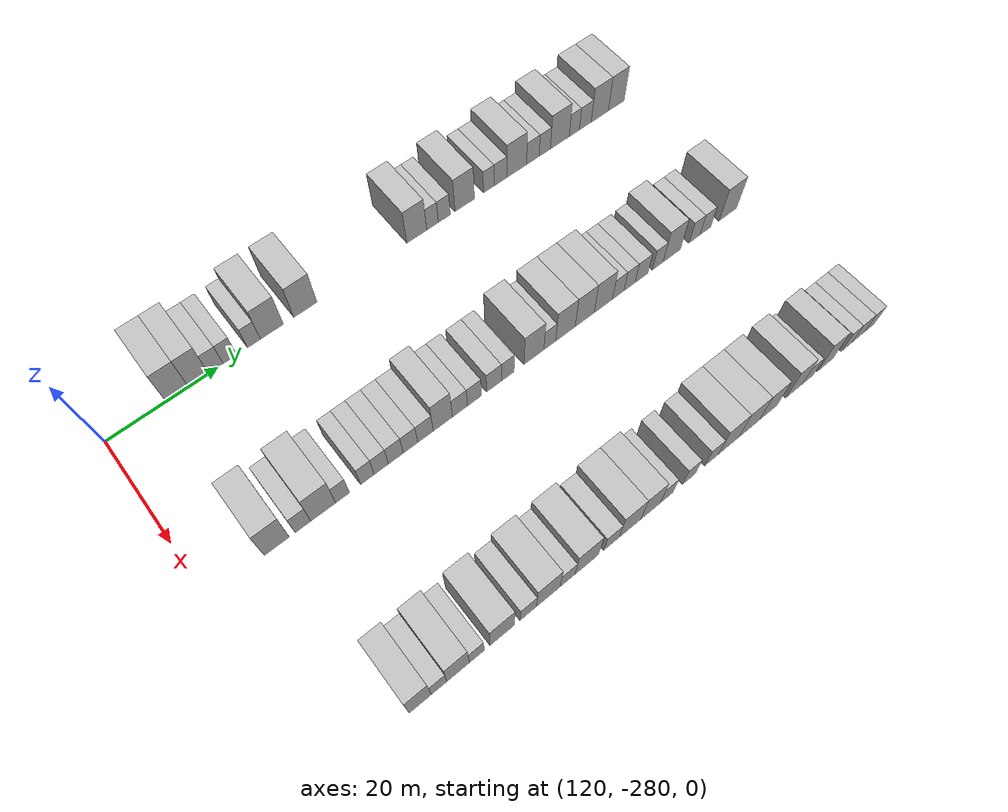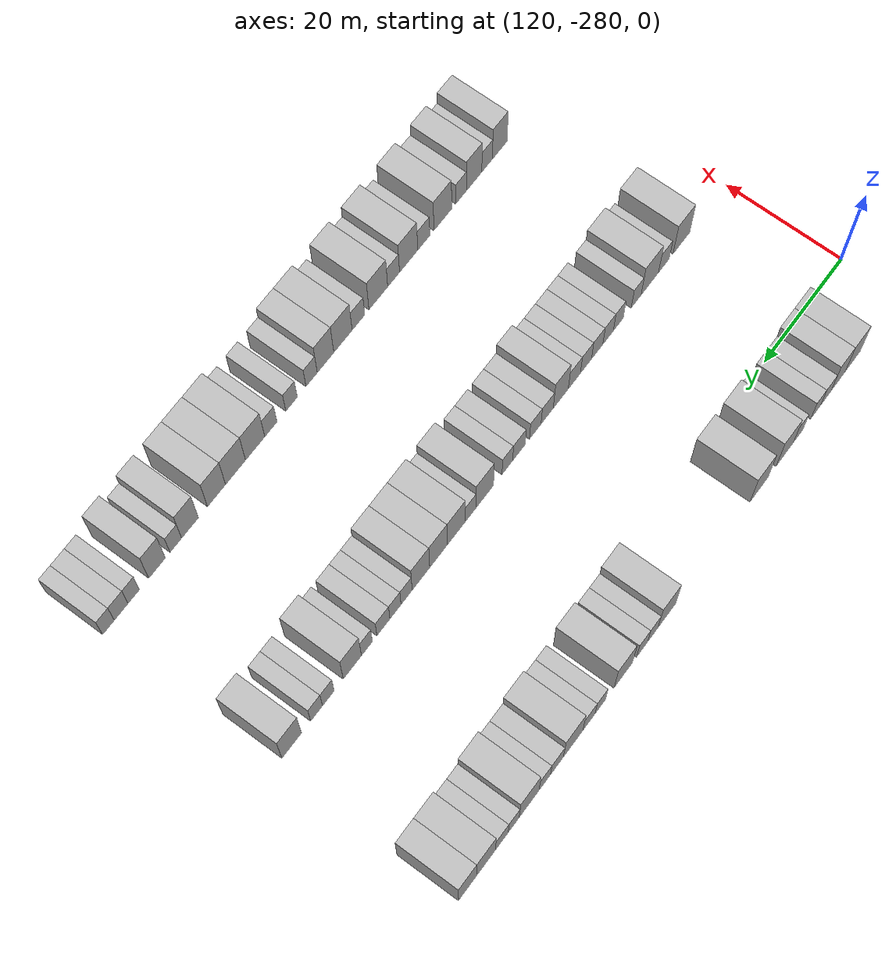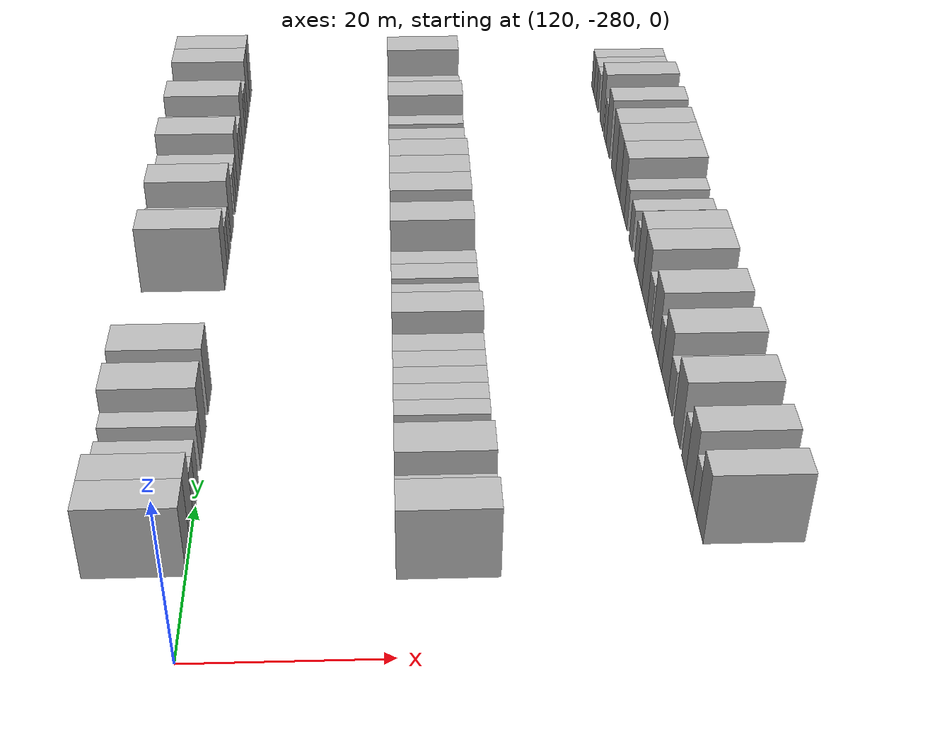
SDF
<sdf version="1.6">
 <world name="default">
  <model name="building_728">
   <static>1</static>
   <pose>115.0000 -267.4559 0 0.000000 0.000000 0.000000</pose>
   <link name="link">
    <pose>0 0 4.50 0 0 0</pose>
    <collision name="collision"><geometry><box><size>10.0000 3.9761 9.0000</size></box></geometry></collision>
    <visual name="visual">
     <cast_shadows>0</cast_shadows>
     <geometry><box><size>10.0000 3.9761 9.0000</size></box></geometry>
     <material>
      <script>
       <uri>model://HANNAS_wall/materials/scripts</uri>
       <uri>model://HANNAS_wall/materials/textures</uri>
       <name>vrc/HANNAS_wall</name>
      </script>
     </material>
    </visual>
   </link>
  </model>
  <model name="building_729">
   <static>1</static>
   <pose>115.0000 -263.6639 0 0.000000 0.000000 0.000000</pose>
   <link name="link">
    <pose>0 0 4.50 0 0 0</pose>
    <collision name="collision"><geometry><box><size>10.0000 3.6079 9.0000</size></box></geometry></collision>
    <visual name="visual">
     <cast_shadows>0</cast_shadows>
     <geometry><box><size>10.0000 3.6079 9.0000</size></box></geometry>
     <material>
      <script>
       <uri>model://HANNAS_wall/materials/scripts</uri>
       <uri>model://HANNAS_wall/materials/textures</uri>
       <name>vrc/HANNAS_wall</name>
      </script>
     </material>
    </visual>
   </link>
  </model>
  <model name="building_730">
   <static>1</static>
   <pose>115.0000 -260.5057 0 0.000000 0.000000 0.000000</pose>
   <link name="link">
    <pose>0 0 3.00 0 0 0</pose>
    <collision name="collision"><geometry><box><size>10.0000 2.7085 6.0000</size></box></geometry></collision>
    <visual name="visual">
     <cast_shadows>0</cast_shadows>
     <geometry><box><size>10.0000 2.7085 6.0000</size></box></geometry>
     <material>
      <script>
       <uri>model://HANNAS_wall/materials/scripts</uri>
       <uri>model://HANNAS_wall/materials/textures</uri>
       <name>vrc/HANNAS_wall</name>
      </script>
     </material>
    </visual>
   </link>
  </model>
  <model name="building_731">
   <static>1</static>
   <pose>115.0000 -257.9058 0 0.000000 0.000000 0.000000</pose>
   <link name="link">
    <pose>0 0 3.00 0 0 0</pose>
    <collision name="collision"><geometry><box><size>10.0000 2.4912 6.0000</size></box></geometry></collision>
    <visual name="visual">
     <cast_shadows>0</cast_shadows>
     <geometry><box><size>10.0000 2.4912 6.0000</size></box></geometry>
     <material>
      <script>
       <uri>model://HANNAS_wall/materials/scripts</uri>
       <uri>model://HANNAS_wall/materials/textures</uri>
       <name>vrc/HANNAS_wall</name>
      </script>
     </material>
    </visual>
   </link>
  </model>
  <model name="building_732">
   <static>1</static>
   <pose>115.0000 -253.4452 0 0.000000 0.000000 0.000000</pose>
   <link name="link">
    <pose>0 0 3.00 0 0 0</pose>
    <collision name="collision"><geometry><box><size>10.0000 2.4299 6.0000</size></box></geometry></collision>
    <visual name="visual">
     <cast_shadows>0</cast_shadows>
     <geometry><box><size>10.0000 2.4299 6.0000</size></box></geometry>
     <material>
      <script>
       <uri>model://HANNAS_wall/materials/scripts</uri>
       <uri>model://HANNAS_wall/materials/textures</uri>
       <name>vrc/HANNAS_wall</name>
      </script>
     </material>
    </visual>
   </link>
  </model>
  <model name="building_733">
   <static>1</static>
   <pose>115.0000 -250.0644 0 0.000000 0.000000 0.000000</pose>
   <link name="link">
    <pose>0 0 4.50 0 0 0</pose>
    <collision name="collision"><geometry><box><size>10.0000 4.3317 9.0000</size></box></geometry></collision>
    <visual name="visual">
     <cast_shadows>0</cast_shadows>
     <geometry><box><size>10.0000 4.3317 9.0000</size></box></geometry>
     <material>
      <script>
       <uri>model://HANNAS_wall/materials/scripts</uri>
       <uri>model://HANNAS_wall/materials/textures</uri>
       <name>vrc/HANNAS_wall</name>
      </script>
     </material>
    </visual>
   </link>
  </model>
  <model name="building_734">
   <static>1</static>
   <pose>115.0000 -243.6487 0 0.000000 0.000000 0.000000</pose>
   <link name="link">
    <pose>0 0 4.50 0 0 0</pose>
    <collision name="collision"><geometry><box><size>10.0000 4.4998 9.0000</size></box></geometry></collision>
    <visual name="visual">
     <cast_shadows>0</cast_shadows>
     <geometry><box><size>10.0000 4.4998 9.0000</size></box></geometry>
     <material>
      <script>
       <uri>model://HANNAS_wall/materials/scripts</uri>
       <uri>model://HANNAS_wall/materials/textures</uri>
       <name>vrc/HANNAS_wall</name>
      </script>
     </material>
    </visual>
   </link>
  </model>
  <model name="building_735">
   <static>1</static>
   <pose>115.0000 -221.0601 0 0.000000 0.000000 0.000000</pose>
   <link name="link">
    <pose>0 0 4.50 0 0 0</pose>
    <collision name="collision"><geometry><box><size>10.0000 4.2258 9.0000</size></box></geometry></collision>
    <visual name="visual">
     <cast_shadows>0</cast_shadows>
     <geometry><box><size>10.0000 4.2258 9.0000</size></box></geometry>
     <material>
      <script>
       <uri>model://HANNAS_wall/materials/scripts</uri>
       <uri>model://HANNAS_wall/materials/textures</uri>
       <name>vrc/HANNAS_wall</name>
      </script>
     </material>
    </visual>
   </link>
  </model>
  <model name="building_736">
   <static>1</static>
   <pose>115.0000 -217.7161 0 0.000000 0.000000 0.000000</pose>
   <link name="link">
    <pose>0 0 3.00 0 0 0</pose>
    <collision name="collision"><geometry><box><size>10.0000 2.4621 6.0000</size></box></geometry></collision>
    <visual name="visual">
     <cast_shadows>0</cast_shadows>
     <geometry><box><size>10.0000 2.4621 6.0000</size></box></geometry>
     <material>
      <script>
       <uri>model://HANNAS_wall/materials/scripts</uri>
       <uri>model://HANNAS_wall/materials/textures</uri>
       <name>vrc/HANNAS_wall</name>
      </script>
     </material>
    </visual>
   </link>
  </model>
  <model name="building_737">
   <static>1</static>
   <pose>115.0000 -215.1894 0 0.000000 0.000000 0.000000</pose>
   <link name="link">
    <pose>0 0 3.00 0 0 0</pose>
    <collision name="collision"><geometry><box><size>10.0000 2.5914 6.0000</size></box></geometry></collision>
    <visual name="visual">
     <cast_shadows>0</cast_shadows>
     <geometry><box><size>10.0000 2.5914 6.0000</size></box></geometry>
     <material>
      <script>
       <uri>model://HANNAS_wall/materials/scripts</uri>
       <uri>model://HANNAS_wall/materials/textures</uri>
       <name>vrc/HANNAS_wall</name>
      </script>
     </material>
    </visual>
   </link>
  </model>
  <model name="building_738">
   <static>1</static>
   <pose>115.0000 -210.7539 0 0.000000 0.000000 0.000000</pose>
   <link name="link">
    <pose>0 0 4.50 0 0 0</pose>
    <collision name="collision"><geometry><box><size>10.0000 4.2796 9.0000</size></box></geometry></collision>
    <visual name="visual">
     <cast_shadows>0</cast_shadows>
     <geometry><box><size>10.0000 4.2796 9.0000</size></box></geometry>
     <material>
      <script>
       <uri>model://HANNAS_wall/materials/scripts</uri>
       <uri>model://HANNAS_wall/materials/textures</uri>
       <name>vrc/HANNAS_wall</name>
      </script>
     </material>
    </visual>
   </link>
  </model>
  <model name="building_739">
   <static>1</static>
   <pose>115.0000 -205.3991 0 0.000000 0.000000 0.000000</pose>
   <link name="link">
    <pose>0 0 3.00 0 0 0</pose>
    <collision name="collision"><geometry><box><size>10.0000 2.4300 6.0000</size></box></geometry></collision>
    <visual name="visual">
     <cast_shadows>0</cast_shadows>
     <geometry><box><size>10.0000 2.4300 6.0000</size></box></geometry>
     <material>
      <script>
       <uri>model://HANNAS_wall/materials/scripts</uri>
       <uri>model://HANNAS_wall/materials/textures</uri>
       <name>vrc/HANNAS_wall</name>
      </script>
     </material>
    </visual>
   </link>
  </model>
  <model name="building_740">
   <static>1</static>
   <pose>115.0000 -202.7671 0 0.000000 0.000000 0.000000</pose>
   <link name="link">
    <pose>0 0 3.00 0 0 0</pose>
    <collision name="collision"><geometry><box><size>10.0000 2.8340 6.0000</size></box></geometry></collision>
    <visual name="visual">
     <cast_shadows>0</cast_shadows>
     <geometry><box><size>10.0000 2.8340 6.0000</size></box></geometry>
     <material>
      <script>
       <uri>model://HANNAS_wall/materials/scripts</uri>
       <uri>model://HANNAS_wall/materials/textures</uri>
       <name>vrc/HANNAS_wall</name>
      </script>
     </material>
    </visual>
   </link>
  </model>
  <model name="building_741">
   <static>1</static>
   <pose>115.0000 -199.1145 0 0.000000 0.000000 0.000000</pose>
   <link name="link">
    <pose>0 0 4.50 0 0 0</pose>
    <collision name="collision"><geometry><box><size>10.0000 4.4713 9.0000</size></box></geometry></collision>
    <visual name="visual">
     <cast_shadows>0</cast_shadows>
     <geometry><box><size>10.0000 4.4713 9.0000</size></box></geometry>
     <material>
      <script>
       <uri>model://HANNAS_wall/materials/scripts</uri>
       <uri>model://HANNAS_wall/materials/textures</uri>
       <name>vrc/HANNAS_wall</name>
      </script>
     </material>
    </visual>
   </link>
  </model>
  <model name="building_742">
   <static>1</static>
   <pose>115.0000 -195.4109 0 0.000000 0.000000 0.000000</pose>
   <link name="link">
    <pose>0 0 3.00 0 0 0</pose>
    <collision name="collision"><geometry><box><size>10.0000 2.9358 6.0000</size></box></geometry></collision>
    <visual name="visual">
     <cast_shadows>0</cast_shadows>
     <geometry><box><size>10.0000 2.9358 6.0000</size></box></geometry>
     <material>
      <script>
       <uri>model://HANNAS_wall/materials/scripts</uri>
       <uri>model://HANNAS_wall/materials/textures</uri>
       <name>vrc/HANNAS_wall</name>
      </script>
     </material>
    </visual>
   </link>
  </model>
  <model name="building_743">
   <static>1</static>
   <pose>115.0000 -192.6400 0 0.000000 0.000000 0.000000</pose>
   <link name="link">
    <pose>0 0 3.00 0 0 0</pose>
    <collision name="collision"><geometry><box><size>10.0000 2.6059 6.0000</size></box></geometry></collision>
    <visual name="visual">
     <cast_shadows>0</cast_shadows>
     <geometry><box><size>10.0000 2.6059 6.0000</size></box></geometry>
     <material>
      <script>
       <uri>model://HANNAS_wall/materials/scripts</uri>
       <uri>model://HANNAS_wall/materials/textures</uri>
       <name>vrc/HANNAS_wall</name>
      </script>
     </material>
    </visual>
   </link>
  </model>
  <model name="building_744">
   <static>1</static>
   <pose>115.0000 -189.1127 0 0.000000 0.000000 0.000000</pose>
   <link name="link">
    <pose>0 0 4.50 0 0 0</pose>
    <collision name="collision"><geometry><box><size>10.0000 4.4488 9.0000</size></box></geometry></collision>
    <visual name="visual">
     <cast_shadows>0</cast_shadows>
     <geometry><box><size>10.0000 4.4488 9.0000</size></box></geometry>
     <material>
      <script>
       <uri>model://HANNAS_wall/materials/scripts</uri>
       <uri>model://HANNAS_wall/materials/textures</uri>
       <name>vrc/HANNAS_wall</name>
      </script>
     </material>
    </visual>
   </link>
  </model>
  <model name="building_745">
   <static>1</static>
   <pose>115.0000 -185.6622 0 0.000000 0.000000 0.000000</pose>
   <link name="link">
    <pose>0 0 3.00 0 0 0</pose>
    <collision name="collision"><geometry><box><size>10.0000 2.4521 6.0000</size></box></geometry></collision>
    <visual name="visual">
     <cast_shadows>0</cast_shadows>
     <geometry><box><size>10.0000 2.4521 6.0000</size></box></geometry>
     <material>
      <script>
       <uri>model://HANNAS_wall/materials/scripts</uri>
       <uri>model://HANNAS_wall/materials/textures</uri>
       <name>vrc/HANNAS_wall</name>
      </script>
     </material>
    </visual>
   </link>
  </model>
  <model name="building_746">
   <static>1</static>
   <pose>115.0000 -183.0148 0 0.000000 0.000000 0.000000</pose>
   <link name="link">
    <pose>0 0 3.00 0 0 0</pose>
    <collision name="collision"><geometry><box><size>10.0000 2.8427 6.0000</size></box></geometry></collision>
    <visual name="visual">
     <cast_shadows>0</cast_shadows>
     <geometry><box><size>10.0000 2.8427 6.0000</size></box></geometry>
     <material>
      <script>
       <uri>model://HANNAS_wall/materials/scripts</uri>
       <uri>model://HANNAS_wall/materials/textures</uri>
       <name>vrc/HANNAS_wall</name>
      </script>
     </material>
    </visual>
   </link>
  </model>
  <model name="building_747">
   <static>1</static>
   <pose>115.0000 -179.5017 0 0.000000 0.000000 0.000000</pose>
   <link name="link">
    <pose>0 0 4.50 0 0 0</pose>
    <collision name="collision"><geometry><box><size>10.0000 4.1835 9.0000</size></box></geometry></collision>
    <visual name="visual">
     <cast_shadows>0</cast_shadows>
     <geometry><box><size>10.0000 4.1835 9.0000</size></box></geometry>
     <material>
      <script>
       <uri>model://HANNAS_wall/materials/scripts</uri>
       <uri>model://HANNAS_wall/materials/textures</uri>
       <name>vrc/HANNAS_wall</name>
      </script>
     </material>
    </visual>
   </link>
  </model>
  <model name="building_748">
   <static>1</static>
   <pose>115.0000 -175.4394 0 0.000000 0.000000 0.000000</pose>
   <link name="link">
    <pose>0 0 4.50 0 0 0</pose>
    <collision name="collision"><geometry><box><size>10.0000 3.9411 9.0000</size></box></geometry></collision>
    <visual name="visual">
     <cast_shadows>0</cast_shadows>
     <geometry><box><size>10.0000 3.9411 9.0000</size></box></geometry>
     <material>
      <script>
       <uri>model://HANNAS_wall/materials/scripts</uri>
       <uri>model://HANNAS_wall/materials/textures</uri>
       <name>vrc/HANNAS_wall</name>
      </script>
     </material>
    </visual>
   </link>
  </model>
  <model name="building_958">
   <static>1</static>
   <pose>145.0000 -268.3136 0 0.000000 0.000000 0.000000</pose>
   <link name="link">
    <pose>0 0 4.50 0 0 0</pose>
    <collision name="collision"><geometry><box><size>10.0000 4.2489 9.0000</size></box></geometry></collision>
    <visual name="visual">
     <cast_shadows>0</cast_shadows>
     <geometry><box><size>10.0000 4.2489 9.0000</size></box></geometry>
     <material>
      <script>
       <uri>model://HANNAS_wall/materials/scripts</uri>
       <uri>model://HANNAS_wall/materials/textures</uri>
       <name>vrc/HANNAS_wall</name>
      </script>
     </material>
    </visual>
   </link>
  </model>
  <model name="building_959">
   <static>1</static>
   <pose>145.0000 -263.8392 0 0.000000 0.000000 0.000000</pose>
   <link name="link">
    <pose>0 0 3.00 0 0 0</pose>
    <collision name="collision"><geometry><box><size>10.0000 2.6999 6.0000</size></box></geometry></collision>
    <visual name="visual">
     <cast_shadows>0</cast_shadows>
     <geometry><box><size>10.0000 2.6999 6.0000</size></box></geometry>
     <material>
      <script>
       <uri>model://HANNAS_wall/materials/scripts</uri>
       <uri>model://HANNAS_wall/materials/textures</uri>
       <name>vrc/HANNAS_wall</name>
      </script>
     </material>
    </visual>
   </link>
  </model>
  <model name="building_960">
   <static>1</static>
   <pose>145.0000 -260.3029 0 0.000000 0.000000 0.000000</pose>
   <link name="link">
    <pose>0 0 4.50 0 0 0</pose>
    <collision name="collision"><geometry><box><size>10.0000 4.3727 9.0000</size></box></geometry></collision>
    <visual name="visual">
     <cast_shadows>0</cast_shadows>
     <geometry><box><size>10.0000 4.3727 9.0000</size></box></geometry>
     <material>
      <script>
       <uri>model://HANNAS_wall/materials/scripts</uri>
       <uri>model://HANNAS_wall/materials/textures</uri>
       <name>vrc/HANNAS_wall</name>
      </script>
     </material>
    </visual>
   </link>
  </model>
  <model name="building_961">
   <static>1</static>
   <pose>145.0000 -256.8818 0 0.000000 0.000000 0.000000</pose>
   <link name="link">
    <pose>0 0 3.00 0 0 0</pose>
    <collision name="collision"><geometry><box><size>10.0000 2.4695 6.0000</size></box></geometry></collision>
    <visual name="visual">
     <cast_shadows>0</cast_shadows>
     <geometry><box><size>10.0000 2.4695 6.0000</size></box></geometry>
     <material>
      <script>
       <uri>model://HANNAS_wall/materials/scripts</uri>
       <uri>model://HANNAS_wall/materials/textures</uri>
       <name>vrc/HANNAS_wall</name>
      </script>
     </material>
    </visual>
   </link>
  </model>
  <model name="building_962">
   <static>1</static>
   <pose>145.0000 -252.4175 0 0.000000 0.000000 0.000000</pose>
   <link name="link">
    <pose>0 0 3.00 0 0 0</pose>
    <collision name="collision"><geometry><box><size>10.0000 2.4590 6.0000</size></box></geometry></collision>
    <visual name="visual">
     <cast_shadows>0</cast_shadows>
     <geometry><box><size>10.0000 2.4590 6.0000</size></box></geometry>
     <material>
      <script>
       <uri>model://HANNAS_wall/materials/scripts</uri>
       <uri>model://HANNAS_wall/materials/textures</uri>
       <name>vrc/HANNAS_wall</name>
      </script>
     </material>
    </visual>
   </link>
  </model>
  <model name="building_963">
   <static>1</static>
   <pose>145.0000 -249.8853 0 0.000000 0.000000 0.000000</pose>
   <link name="link">
    <pose>0 0 3.00 0 0 0</pose>
    <collision name="collision"><geometry><box><size>10.0000 2.6055 6.0000</size></box></geometry></collision>
    <visual name="visual">
     <cast_shadows>0</cast_shadows>
     <geometry><box><size>10.0000 2.6055 6.0000</size></box></geometry>
     <material>
      <script>
       <uri>model://HANNAS_wall/materials/scripts</uri>
       <uri>model://HANNAS_wall/materials/textures</uri>
       <name>vrc/HANNAS_wall</name>
      </script>
     </material>
    </visual>
   </link>
  </model>
  <model name="building_964">
   <static>1</static>
   <pose>145.0000 -247.1969 0 0.000000 0.000000 0.000000</pose>
   <link name="link">
    <pose>0 0 3.00 0 0 0</pose>
    <collision name="collision"><geometry><box><size>10.0000 2.7712 6.0000</size></box></geometry></collision>
    <visual name="visual">
     <cast_shadows>0</cast_shadows>
     <geometry><box><size>10.0000 2.7712 6.0000</size></box></geometry>
     <material>
      <script>
       <uri>model://HANNAS_wall/materials/scripts</uri>
       <uri>model://HANNAS_wall/materials/textures</uri>
       <name>vrc/HANNAS_wall</name>
      </script>
     </material>
    </visual>
   </link>
  </model>
  <model name="building_965">
   <static>1</static>
   <pose>145.0000 -244.4551 0 0.000000 0.000000 0.000000</pose>
   <link name="link">
    <pose>0 0 3.00 0 0 0</pose>
    <collision name="collision"><geometry><box><size>10.0000 2.7125 6.0000</size></box></geometry></collision>
    <visual name="visual">
     <cast_shadows>0</cast_shadows>
     <geometry><box><size>10.0000 2.7125 6.0000</size></box></geometry>
     <material>
      <script>
       <uri>model://HANNAS_wall/materials/scripts</uri>
       <uri>model://HANNAS_wall/materials/textures</uri>
       <name>vrc/HANNAS_wall</name>
      </script>
     </material>
    </visual>
   </link>
  </model>
  <model name="building_966">
   <static>1</static>
   <pose>145.0000 -241.6198 0 0.000000 0.000000 0.000000</pose>
   <link name="link">
    <pose>0 0 3.00 0 0 0</pose>
    <collision name="collision"><geometry><box><size>10.0000 2.9579 6.0000</size></box></geometry></collision>
    <visual name="visual">
     <cast_shadows>0</cast_shadows>
     <geometry><box><size>10.0000 2.9579 6.0000</size></box></geometry>
     <material>
      <script>
       <uri>model://HANNAS_wall/materials/scripts</uri>
       <uri>model://HANNAS_wall/materials/textures</uri>
       <name>vrc/HANNAS_wall</name>
      </script>
     </material>
    </visual>
   </link>
  </model>
  <model name="building_967">
   <static>1</static>
   <pose>145.0000 -238.3115 0 0.000000 0.000000 0.000000</pose>
   <link name="link">
    <pose>0 0 4.50 0 0 0</pose>
    <collision name="collision"><geometry><box><size>10.0000 3.6589 9.0000</size></box></geometry></collision>
    <visual name="visual">
     <cast_shadows>0</cast_shadows>
     <geometry><box><size>10.0000 3.6589 9.0000</size></box></geometry>
     <material>
      <script>
       <uri>model://HANNAS_wall/materials/scripts</uri>
       <uri>model://HANNAS_wall/materials/textures</uri>
       <name>vrc/HANNAS_wall</name>
      </script>
     </material>
    </visual>
   </link>
  </model>
  <model name="building_968">
   <static>1</static>
   <pose>145.0000 -235.0158 0 0.000000 0.000000 0.000000</pose>
   <link name="link">
    <pose>0 0 3.00 0 0 0</pose>
    <collision name="collision"><geometry><box><size>10.0000 2.9324 6.0000</size></box></geometry></collision>
    <visual name="visual">
     <cast_shadows>0</cast_shadows>
     <geometry><box><size>10.0000 2.9324 6.0000</size></box></geometry>
     <material>
      <script>
       <uri>model://HANNAS_wall/materials/scripts</uri>
       <uri>model://HANNAS_wall/materials/textures</uri>
       <name>vrc/HANNAS_wall</name>
      </script>
     </material>
    </visual>
   </link>
  </model>
  <model name="building_969">
   <static>1</static>
   <pose>145.0000 -232.1669 0 0.000000 0.000000 0.000000</pose>
   <link name="link">
    <pose>0 0 3.00 0 0 0</pose>
    <collision name="collision"><geometry><box><size>10.0000 2.7655 6.0000</size></box></geometry></collision>
    <visual name="visual">
     <cast_shadows>0</cast_shadows>
     <geometry><box><size>10.0000 2.7655 6.0000</size></box></geometry>
     <material>
      <script>
       <uri>model://HANNAS_wall/materials/scripts</uri>
       <uri>model://HANNAS_wall/materials/textures</uri>
       <name>vrc/HANNAS_wall</name>
      </script>
     </material>
    </visual>
   </link>
  </model>
  <model name="building_970">
   <static>1</static>
   <pose>145.0000 -228.2865 0 0.000000 0.000000 0.000000</pose>
   <link name="link">
    <pose>0 0 3.00 0 0 0</pose>
    <collision name="collision"><geometry><box><size>10.0000 2.9953 6.0000</size></box></geometry></collision>
    <visual name="visual">
     <cast_shadows>0</cast_shadows>
     <geometry><box><size>10.0000 2.9953 6.0000</size></box></geometry>
     <material>
      <script>
       <uri>model://HANNAS_wall/materials/scripts</uri>
       <uri>model://HANNAS_wall/materials/textures</uri>
       <name>vrc/HANNAS_wall</name>
      </script>
     </material>
    </visual>
   </link>
  </model>
  <model name="building_971">
   <static>1</static>
   <pose>145.0000 -225.5214 0 0.000000 0.000000 0.000000</pose>
   <link name="link">
    <pose>0 0 3.00 0 0 0</pose>
    <collision name="collision"><geometry><box><size>10.0000 2.5348 6.0000</size></box></geometry></collision>
    <visual name="visual">
     <cast_shadows>0</cast_shadows>
     <geometry><box><size>10.0000 2.5348 6.0000</size></box></geometry>
     <material>
      <script>
       <uri>model://HANNAS_wall/materials/scripts</uri>
       <uri>model://HANNAS_wall/materials/textures</uri>
       <name>vrc/HANNAS_wall</name>
      </script>
     </material>
    </visual>
   </link>
  </model>
  <model name="building_972">
   <static>1</static>
   <pose>145.0000 -220.1914 0 0.000000 0.000000 0.000000</pose>
   <link name="link">
    <pose>0 0 4.50 0 0 0</pose>
    <collision name="collision"><geometry><box><size>10.0000 4.1253 9.0000</size></box></geometry></collision>
    <visual name="visual">
     <cast_shadows>0</cast_shadows>
     <geometry><box><size>10.0000 4.1253 9.0000</size></box></geometry>
     <material>
      <script>
       <uri>model://HANNAS_wall/materials/scripts</uri>
       <uri>model://HANNAS_wall/materials/textures</uri>
       <name>vrc/HANNAS_wall</name>
      </script>
     </material>
    </visual>
   </link>
  </model>
  <model name="building_973">
   <static>1</static>
   <pose>145.0000 -216.9075 0 0.000000 0.000000 0.000000</pose>
   <link name="link">
    <pose>0 0 3.00 0 0 0</pose>
    <collision name="collision"><geometry><box><size>10.0000 2.4424 6.0000</size></box></geometry></collision>
    <visual name="visual">
     <cast_shadows>0</cast_shadows>
     <geometry><box><size>10.0000 2.4424 6.0000</size></box></geometry>
     <material>
      <script>
       <uri>model://HANNAS_wall/materials/scripts</uri>
       <uri>model://HANNAS_wall/materials/textures</uri>
       <name>vrc/HANNAS_wall</name>
      </script>
     </material>
    </visual>
   </link>
  </model>
  <model name="building_974">
   <static>1</static>
   <pose>145.0000 -213.6073 0 0.000000 0.000000 0.000000</pose>
   <link name="link">
    <pose>0 0 4.50 0 0 0</pose>
    <collision name="collision"><geometry><box><size>10.0000 4.1581 9.0000</size></box></geometry></collision>
    <visual name="visual">
     <cast_shadows>0</cast_shadows>
     <geometry><box><size>10.0000 4.1581 9.0000</size></box></geometry>
     <material>
      <script>
       <uri>model://HANNAS_wall/materials/scripts</uri>
       <uri>model://HANNAS_wall/materials/textures</uri>
       <name>vrc/HANNAS_wall</name>
      </script>
     </material>
    </visual>
   </link>
  </model>
  <model name="building_975">
   <static>1</static>
   <pose>145.0000 -209.4894 0 0.000000 0.000000 0.000000</pose>
   <link name="link">
    <pose>0 0 4.50 0 0 0</pose>
    <collision name="collision"><geometry><box><size>10.0000 4.0776 9.0000</size></box></geometry></collision>
    <visual name="visual">
     <cast_shadows>0</cast_shadows>
     <geometry><box><size>10.0000 4.0776 9.0000</size></box></geometry>
     <material>
      <script>
       <uri>model://HANNAS_wall/materials/scripts</uri>
       <uri>model://HANNAS_wall/materials/textures</uri>
       <name>vrc/HANNAS_wall</name>
      </script>
     </material>
    </visual>
   </link>
  </model>
  <model name="building_976">
   <static>1</static>
   <pose>145.0000 -205.4465 0 0.000000 0.000000 0.000000</pose>
   <link name="link">
    <pose>0 0 4.50 0 0 0</pose>
    <collision name="collision"><geometry><box><size>10.0000 4.0081 9.0000</size></box></geometry></collision>
    <visual name="visual">
     <cast_shadows>0</cast_shadows>
     <geometry><box><size>10.0000 4.0081 9.0000</size></box></geometry>
     <material>
      <script>
       <uri>model://HANNAS_wall/materials/scripts</uri>
       <uri>model://HANNAS_wall/materials/textures</uri>
       <name>vrc/HANNAS_wall</name>
      </script>
     </material>
    </visual>
   </link>
  </model>
  <model name="building_977">
   <static>1</static>
   <pose>145.0000 -202.1754 0 0.000000 0.000000 0.000000</pose>
   <link name="link">
    <pose>0 0 3.00 0 0 0</pose>
    <collision name="collision"><geometry><box><size>10.0000 2.5341 6.0000</size></box></geometry></collision>
    <visual name="visual">
     <cast_shadows>0</cast_shadows>
     <geometry><box><size>10.0000 2.5341 6.0000</size></box></geometry>
     <material>
      <script>
       <uri>model://HANNAS_wall/materials/scripts</uri>
       <uri>model://HANNAS_wall/materials/textures</uri>
       <name>vrc/HANNAS_wall</name>
      </script>
     </material>
    </visual>
   </link>
  </model>
  <model name="building_978">
   <static>1</static>
   <pose>145.0000 -199.6575 0 0.000000 0.000000 0.000000</pose>
   <link name="link">
    <pose>0 0 3.00 0 0 0</pose>
    <collision name="collision"><geometry><box><size>10.0000 2.5017 6.0000</size></box></geometry></collision>
    <visual name="visual">
     <cast_shadows>0</cast_shadows>
     <geometry><box><size>10.0000 2.5017 6.0000</size></box></geometry>
     <material>
      <script>
       <uri>model://HANNAS_wall/materials/scripts</uri>
       <uri>model://HANNAS_wall/materials/textures</uri>
       <name>vrc/HANNAS_wall</name>
      </script>
     </material>
    </visual>
   </link>
  </model>
  <model name="building_979">
   <static>1</static>
   <pose>145.0000 -196.9474 0 0.000000 0.000000 0.000000</pose>
   <link name="link">
    <pose>0 0 3.00 0 0 0</pose>
    <collision name="collision"><geometry><box><size>10.0000 2.9185 6.0000</size></box></geometry></collision>
    <visual name="visual">
     <cast_shadows>0</cast_shadows>
     <geometry><box><size>10.0000 2.9185 6.0000</size></box></geometry>
     <material>
      <script>
       <uri>model://HANNAS_wall/materials/scripts</uri>
       <uri>model://HANNAS_wall/materials/textures</uri>
       <name>vrc/HANNAS_wall</name>
      </script>
     </material>
    </visual>
   </link>
  </model>
  <model name="building_980">
   <static>1</static>
   <pose>145.0000 -193.2586 0 0.000000 0.000000 0.000000</pose>
   <link name="link">
    <pose>0 0 3.00 0 0 0</pose>
    <collision name="collision"><geometry><box><size>10.0000 2.4591 6.0000</size></box></geometry></collision>
    <visual name="visual">
     <cast_shadows>0</cast_shadows>
     <geometry><box><size>10.0000 2.4591 6.0000</size></box></geometry>
     <material>
      <script>
       <uri>model://HANNAS_wall/materials/scripts</uri>
       <uri>model://HANNAS_wall/materials/textures</uri>
       <name>vrc/HANNAS_wall</name>
      </script>
     </material>
    </visual>
   </link>
  </model>
  <model name="building_981">
   <static>1</static>
   <pose>145.0000 -190.0172 0 0.000000 0.000000 0.000000</pose>
   <link name="link">
    <pose>0 0 4.50 0 0 0</pose>
    <collision name="collision"><geometry><box><size>10.0000 4.0236 9.0000</size></box></geometry></collision>
    <visual name="visual">
     <cast_shadows>0</cast_shadows>
     <geometry><box><size>10.0000 4.0236 9.0000</size></box></geometry>
     <material>
      <script>
       <uri>model://HANNAS_wall/materials/scripts</uri>
       <uri>model://HANNAS_wall/materials/textures</uri>
       <name>vrc/HANNAS_wall</name>
      </script>
     </material>
    </visual>
   </link>
  </model>
  <model name="building_982">
   <static>1</static>
   <pose>145.0000 -184.7328 0 0.000000 0.000000 0.000000</pose>
   <link name="link">
    <pose>0 0 3.00 0 0 0</pose>
    <collision name="collision"><geometry><box><size>10.0000 2.5454 6.0000</size></box></geometry></collision>
    <visual name="visual">
     <cast_shadows>0</cast_shadows>
     <geometry><box><size>10.0000 2.5454 6.0000</size></box></geometry>
     <material>
      <script>
       <uri>model://HANNAS_wall/materials/scripts</uri>
       <uri>model://HANNAS_wall/materials/textures</uri>
       <name>vrc/HANNAS_wall</name>
      </script>
     </material>
    </visual>
   </link>
  </model>
  <model name="building_983">
   <static>1</static>
   <pose>145.0000 -182.1558 0 0.000000 0.000000 0.000000</pose>
   <link name="link">
    <pose>0 0 3.00 0 0 0</pose>
    <collision name="collision"><geometry><box><size>10.0000 2.6085 6.0000</size></box></geometry></collision>
    <visual name="visual">
     <cast_shadows>0</cast_shadows>
     <geometry><box><size>10.0000 2.6085 6.0000</size></box></geometry>
     <material>
      <script>
       <uri>model://HANNAS_wall/materials/scripts</uri>
       <uri>model://HANNAS_wall/materials/textures</uri>
       <name>vrc/HANNAS_wall</name>
      </script>
     </material>
    </visual>
   </link>
  </model>
  <model name="building_984">
   <static>1</static>
   <pose>145.0000 -176.7298 0 0.000000 0.000000 0.000000</pose>
   <link name="link">
    <pose>0 0 4.50 0 0 0</pose>
    <collision name="collision"><geometry><box><size>10.0000 4.2435 9.0000</size></box></geometry></collision>
    <visual name="visual">
     <cast_shadows>0</cast_shadows>
     <geometry><box><size>10.0000 4.2435 9.0000</size></box></geometry>
     <material>
      <script>
       <uri>model://HANNAS_wall/materials/scripts</uri>
       <uri>model://HANNAS_wall/materials/textures</uri>
       <name>vrc/HANNAS_wall</name>
      </script>
     </material>
    </visual>
   </link>
  </model>
  <model name="building_1183">
   <static>1</static>
   <pose>175.0000 -264.8989 0 0.000000 0.000000 0.000000</pose>
   <link name="link">
    <pose>0 0 4.50 0 0 0</pose>
    <collision name="collision"><geometry><box><size>10.0000 3.6587 9.0000</size></box></geometry></collision>
    <visual name="visual">
     <cast_shadows>0</cast_shadows>
     <geometry><box><size>10.0000 3.6587 9.0000</size></box></geometry>
     <material>
      <script>
       <uri>model://HANNAS_wall/materials/scripts</uri>
       <uri>model://HANNAS_wall/materials/textures</uri>
       <name>vrc/HANNAS_wall</name>
      </script>
     </material>
    </visual>
   </link>
  </model>
  <model name="building_1184">
   <static>1</static>
   <pose>175.0000 -261.7554 0 0.000000 0.000000 0.000000</pose>
   <link name="link">
    <pose>0 0 3.00 0 0 0</pose>
    <collision name="collision"><geometry><box><size>10.0000 2.6284 6.0000</size></box></geometry></collision>
    <visual name="visual">
     <cast_shadows>0</cast_shadows>
     <geometry><box><size>10.0000 2.6284 6.0000</size></box></geometry>
     <material>
      <script>
       <uri>model://HANNAS_wall/materials/scripts</uri>
       <uri>model://HANNAS_wall/materials/textures</uri>
       <name>vrc/HANNAS_wall</name>
      </script>
     </material>
    </visual>
   </link>
  </model>
  <model name="building_1185">
   <static>1</static>
   <pose>175.0000 -258.5336 0 0.000000 0.000000 0.000000</pose>
   <link name="link">
    <pose>0 0 4.50 0 0 0</pose>
    <collision name="collision"><geometry><box><size>10.0000 3.8152 9.0000</size></box></geometry></collision>
    <visual name="visual">
     <cast_shadows>0</cast_shadows>
     <geometry><box><size>10.0000 3.8152 9.0000</size></box></geometry>
     <material>
      <script>
       <uri>model://HANNAS_wall/materials/scripts</uri>
       <uri>model://HANNAS_wall/materials/textures</uri>
       <name>vrc/HANNAS_wall</name>
      </script>
     </material>
    </visual>
   </link>
  </model>
  <model name="building_1186">
   <static>1</static>
   <pose>175.0000 -255.3270 0 0.000000 0.000000 0.000000</pose>
   <link name="link">
    <pose>0 0 3.00 0 0 0</pose>
    <collision name="collision"><geometry><box><size>10.0000 2.5979 6.0000</size></box></geometry></collision>
    <visual name="visual">
     <cast_shadows>0</cast_shadows>
     <geometry><box><size>10.0000 2.5979 6.0000</size></box></geometry>
     <material>
      <script>
       <uri>model://HANNAS_wall/materials/scripts</uri>
       <uri>model://HANNAS_wall/materials/textures</uri>
       <name>vrc/HANNAS_wall</name>
      </script>
     </material>
    </visual>
   </link>
  </model>
  <model name="building_1187">
   <static>1</static>
   <pose>175.0000 -250.8705 0 0.000000 0.000000 0.000000</pose>
   <link name="link">
    <pose>0 0 4.50 0 0 0</pose>
    <collision name="collision"><geometry><box><size>10.0000 4.3153 9.0000</size></box></geometry></collision>
    <visual name="visual">
     <cast_shadows>0</cast_shadows>
     <geometry><box><size>10.0000 4.3153 9.0000</size></box></geometry>
     <material>
      <script>
       <uri>model://HANNAS_wall/materials/scripts</uri>
       <uri>model://HANNAS_wall/materials/textures</uri>
       <name>vrc/HANNAS_wall</name>
      </script>
     </material>
    </visual>
   </link>
  </model>
  <model name="building_1188">
   <static>1</static>
   <pose>175.0000 -246.2555 0 0.000000 0.000000 0.000000</pose>
   <link name="link">
    <pose>0 0 3.00 0 0 0</pose>
    <collision name="collision"><geometry><box><size>10.0000 2.9147 6.0000</size></box></geometry></collision>
    <visual name="visual">
     <cast_shadows>0</cast_shadows>
     <geometry><box><size>10.0000 2.9147 6.0000</size></box></geometry>
     <material>
      <script>
       <uri>model://HANNAS_wall/materials/scripts</uri>
       <uri>model://HANNAS_wall/materials/textures</uri>
       <name>vrc/HANNAS_wall</name>
      </script>
     </material>
    </visual>
   </link>
  </model>
  <model name="building_1189">
   <static>1</static>
   <pose>175.0000 -242.6124 0 0.000000 0.000000 0.000000</pose>
   <link name="link">
    <pose>0 0 4.50 0 0 0</pose>
    <collision name="collision"><geometry><box><size>10.0000 4.3714 9.0000</size></box></geometry></collision>
    <visual name="visual">
     <cast_shadows>0</cast_shadows>
     <geometry><box><size>10.0000 4.3714 9.0000</size></box></geometry>
     <material>
      <script>
       <uri>model://HANNAS_wall/materials/scripts</uri>
       <uri>model://HANNAS_wall/materials/textures</uri>
       <name>vrc/HANNAS_wall</name>
      </script>
     </material>
    </visual>
   </link>
  </model>
  <model name="building_1190">
   <static>1</static>
   <pose>175.0000 -239.0185 0 0.000000 0.000000 0.000000</pose>
   <link name="link">
    <pose>0 0 3.00 0 0 0</pose>
    <collision name="collision"><geometry><box><size>10.0000 2.8165 6.0000</size></box></geometry></collision>
    <visual name="visual">
     <cast_shadows>0</cast_shadows>
     <geometry><box><size>10.0000 2.8165 6.0000</size></box></geometry>
     <material>
      <script>
       <uri>model://HANNAS_wall/materials/scripts</uri>
       <uri>model://HANNAS_wall/materials/textures</uri>
       <name>vrc/HANNAS_wall</name>
      </script>
     </material>
    </visual>
   </link>
  </model>
  <model name="building_1191">
   <static>1</static>
   <pose>175.0000 -235.3865 0 0.000000 0.000000 0.000000</pose>
   <link name="link">
    <pose>0 0 4.50 0 0 0</pose>
    <collision name="collision"><geometry><box><size>10.0000 4.4476 9.0000</size></box></geometry></collision>
    <visual name="visual">
     <cast_shadows>0</cast_shadows>
     <geometry><box><size>10.0000 4.4476 9.0000</size></box></geometry>
     <material>
      <script>
       <uri>model://HANNAS_wall/materials/scripts</uri>
       <uri>model://HANNAS_wall/materials/textures</uri>
       <name>vrc/HANNAS_wall</name>
      </script>
     </material>
    </visual>
   </link>
  </model>
  <model name="building_1192">
   <static>1</static>
   <pose>175.0000 -230.6824 0 0.000000 0.000000 0.000000</pose>
   <link name="link">
    <pose>0 0 3.00 0 0 0</pose>
    <collision name="collision"><geometry><box><size>10.0000 2.9606 6.0000</size></box></geometry></collision>
    <visual name="visual">
     <cast_shadows>0</cast_shadows>
     <geometry><box><size>10.0000 2.9606 6.0000</size></box></geometry>
     <material>
      <script>
       <uri>model://HANNAS_wall/materials/scripts</uri>
       <uri>model://HANNAS_wall/materials/textures</uri>
       <name>vrc/HANNAS_wall</name>
      </script>
     </material>
    </visual>
   </link>
  </model>
  <model name="building_1193">
   <static>1</static>
   <pose>175.0000 -227.0696 0 0.000000 0.000000 0.000000</pose>
   <link name="link">
    <pose>0 0 4.50 0 0 0</pose>
    <collision name="collision"><geometry><box><size>10.0000 4.2648 9.0000</size></box></geometry></collision>
    <visual name="visual">
     <cast_shadows>0</cast_shadows>
     <geometry><box><size>10.0000 4.2648 9.0000</size></box></geometry>
     <material>
      <script>
       <uri>model://HANNAS_wall/materials/scripts</uri>
       <uri>model://HANNAS_wall/materials/textures</uri>
       <name>vrc/HANNAS_wall</name>
      </script>
     </material>
    </visual>
   </link>
  </model>
  <model name="building_1194">
   <static>1</static>
   <pose>175.0000 -223.0106 0 0.000000 0.000000 0.000000</pose>
   <link name="link">
    <pose>0 0 4.50 0 0 0</pose>
    <collision name="collision"><geometry><box><size>10.0000 3.8532 9.0000</size></box></geometry></collision>
    <visual name="visual">
     <cast_shadows>0</cast_shadows>
     <geometry><box><size>10.0000 3.8532 9.0000</size></box></geometry>
     <material>
      <script>
       <uri>model://HANNAS_wall/materials/scripts</uri>
       <uri>model://HANNAS_wall/materials/textures</uri>
       <name>vrc/HANNAS_wall</name>
      </script>
     </material>
    </visual>
   </link>
  </model>
  <model name="building_1195">
   <static>1</static>
   <pose>175.0000 -219.7870 0 0.000000 0.000000 0.000000</pose>
   <link name="link">
    <pose>0 0 3.00 0 0 0</pose>
    <collision name="collision"><geometry><box><size>10.0000 2.5941 6.0000</size></box></geometry></collision>
    <visual name="visual">
     <cast_shadows>0</cast_shadows>
     <geometry><box><size>10.0000 2.5941 6.0000</size></box></geometry>
     <material>
      <script>
       <uri>model://HANNAS_wall/materials/scripts</uri>
       <uri>model://HANNAS_wall/materials/textures</uri>
       <name>vrc/HANNAS_wall</name>
      </script>
     </material>
    </visual>
   </link>
  </model>
  <model name="building_1196">
   <static>1</static>
   <pose>175.0000 -215.1806 0 0.000000 0.000000 0.000000</pose>
   <link name="link">
    <pose>0 0 3.00 0 0 0</pose>
    <collision name="collision"><geometry><box><size>10.0000 2.6187 6.0000</size></box></geometry></collision>
    <visual name="visual">
     <cast_shadows>0</cast_shadows>
     <geometry><box><size>10.0000 2.6187 6.0000</size></box></geometry>
     <material>
      <script>
       <uri>model://HANNAS_wall/materials/scripts</uri>
       <uri>model://HANNAS_wall/materials/textures</uri>
       <name>vrc/HANNAS_wall</name>
      </script>
     </material>
    </visual>
   </link>
  </model>
  <model name="building_1197">
   <static>1</static>
   <pose>175.0000 -210.4815 0 0.000000 0.000000 0.000000</pose>
   <link name="link">
    <pose>0 0 3.00 0 0 0</pose>
    <collision name="collision"><geometry><box><size>10.0000 2.7794 6.0000</size></box></geometry></collision>
    <visual name="visual">
     <cast_shadows>0</cast_shadows>
     <geometry><box><size>10.0000 2.7794 6.0000</size></box></geometry>
     <material>
      <script>
       <uri>model://HANNAS_wall/materials/scripts</uri>
       <uri>model://HANNAS_wall/materials/textures</uri>
       <name>vrc/HANNAS_wall</name>
      </script>
     </material>
    </visual>
   </link>
  </model>
  <model name="building_1198">
   <static>1</static>
   <pose>175.0000 -206.9208 0 0.000000 0.000000 0.000000</pose>
   <link name="link">
    <pose>0 0 4.50 0 0 0</pose>
    <collision name="collision"><geometry><box><size>10.0000 4.3420 9.0000</size></box></geometry></collision>
    <visual name="visual">
     <cast_shadows>0</cast_shadows>
     <geometry><box><size>10.0000 4.3420 9.0000</size></box></geometry>
     <material>
      <script>
       <uri>model://HANNAS_wall/materials/scripts</uri>
       <uri>model://HANNAS_wall/materials/textures</uri>
       <name>vrc/HANNAS_wall</name>
      </script>
     </material>
    </visual>
   </link>
  </model>
  <model name="building_1199">
   <static>1</static>
   <pose>175.0000 -202.5170 0 0.000000 0.000000 0.000000</pose>
   <link name="link">
    <pose>0 0 4.50 0 0 0</pose>
    <collision name="collision"><geometry><box><size>10.0000 4.4655 9.0000</size></box></geometry></collision>
    <visual name="visual">
     <cast_shadows>0</cast_shadows>
     <geometry><box><size>10.0000 4.4655 9.0000</size></box></geometry>
     <material>
      <script>
       <uri>model://HANNAS_wall/materials/scripts</uri>
       <uri>model://HANNAS_wall/materials/textures</uri>
       <name>vrc/HANNAS_wall</name>
      </script>
     </material>
    </visual>
   </link>
  </model>
  <model name="building_1200">
   <static>1</static>
   <pose>175.0000 -198.2824 0 0.000000 0.000000 0.000000</pose>
   <link name="link">
    <pose>0 0 4.50 0 0 0</pose>
    <collision name="collision"><geometry><box><size>10.0000 4.0038 9.0000</size></box></geometry></collision>
    <visual name="visual">
     <cast_shadows>0</cast_shadows>
     <geometry><box><size>10.0000 4.0038 9.0000</size></box></geometry>
     <material>
      <script>
       <uri>model://HANNAS_wall/materials/scripts</uri>
       <uri>model://HANNAS_wall/materials/textures</uri>
       <name>vrc/HANNAS_wall</name>
      </script>
     </material>
    </visual>
   </link>
  </model>
  <model name="building_1201">
   <static>1</static>
   <pose>175.0000 -192.4338 0 0.000000 0.000000 0.000000</pose>
   <link name="link">
    <pose>0 0 4.50 0 0 0</pose>
    <collision name="collision"><geometry><box><size>10.0000 3.6932 9.0000</size></box></geometry></collision>
    <visual name="visual">
     <cast_shadows>0</cast_shadows>
     <geometry><box><size>10.0000 3.6932 9.0000</size></box></geometry>
     <material>
      <script>
       <uri>model://HANNAS_wall/materials/scripts</uri>
       <uri>model://HANNAS_wall/materials/textures</uri>
       <name>vrc/HANNAS_wall</name>
      </script>
     </material>
    </visual>
   </link>
  </model>
  <model name="building_1202">
   <static>1</static>
   <pose>175.0000 -189.3174 0 0.000000 0.000000 0.000000</pose>
   <link name="link">
    <pose>0 0 3.00 0 0 0</pose>
    <collision name="collision"><geometry><box><size>10.0000 2.5396 6.0000</size></box></geometry></collision>
    <visual name="visual">
     <cast_shadows>0</cast_shadows>
     <geometry><box><size>10.0000 2.5396 6.0000</size></box></geometry>
     <material>
      <script>
       <uri>model://HANNAS_wall/materials/scripts</uri>
       <uri>model://HANNAS_wall/materials/textures</uri>
       <name>vrc/HANNAS_wall</name>
      </script>
     </material>
    </visual>
   </link>
  </model>
  <model name="building_1203">
   <static>1</static>
   <pose>175.0000 -185.2474 0 0.000000 0.000000 0.000000</pose>
   <link name="link">
    <pose>0 0 4.50 0 0 0</pose>
    <collision name="collision"><geometry><box><size>10.0000 3.6006 9.0000</size></box></geometry></collision>
    <visual name="visual">
     <cast_shadows>0</cast_shadows>
     <geometry><box><size>10.0000 3.6006 9.0000</size></box></geometry>
     <material>
      <script>
       <uri>model://HANNAS_wall/materials/scripts</uri>
       <uri>model://HANNAS_wall/materials/textures</uri>
       <name>vrc/HANNAS_wall</name>
      </script>
     </material>
    </visual>
   </link>
  </model>
  <model name="building_1204">
   <static>1</static>
   <pose>175.0000 -180.2241 0 0.000000 0.000000 0.000000</pose>
   <link name="link">
    <pose>0 0 3.00 0 0 0</pose>
    <collision name="collision"><geometry><box><size>10.0000 2.4460 6.0000</size></box></geometry></collision>
    <visual name="visual">
     <cast_shadows>0</cast_shadows>
     <geometry><box><size>10.0000 2.4460 6.0000</size></box></geometry>
     <material>
      <script>
       <uri>model://HANNAS_wall/materials/scripts</uri>
       <uri>model://HANNAS_wall/materials/textures</uri>
       <name>vrc/HANNAS_wall</name>
      </script>
     </material>
    </visual>
   </link>
  </model>
  <model name="building_1205">
   <static>1</static>
   <pose>175.0000 -177.5332 0 0.000000 0.000000 0.000000</pose>
   <link name="link">
    <pose>0 0 3.00 0 0 0</pose>
    <collision name="collision"><geometry><box><size>10.0000 2.9358 6.0000</size></box></geometry></collision>
    <visual name="visual">
     <cast_shadows>0</cast_shadows>
     <geometry><box><size>10.0000 2.9358 6.0000</size></box></geometry>
     <material>
      <script>
       <uri>model://HANNAS_wall/materials/scripts</uri>
       <uri>model://HANNAS_wall/materials/textures</uri>
       <name>vrc/HANNAS_wall</name>
      </script>
     </material>
    </visual>
   </link>
  </model>
  <model name="building_1206">
   <static>1</static>
   <pose>175.0000 -174.8205 0 0.000000 0.000000 0.000000</pose>
   <link name="link">
    <pose>0 0 3.00 0 0 0</pose>
    <collision name="collision"><geometry><box><size>10.0000 2.4896 6.0000</size></box></geometry></collision>
    <visual name="visual">
     <cast_shadows>0</cast_shadows>
     <geometry><box><size>10.0000 2.4896 6.0000</size></box></geometry>
     <material>
      <script>
       <uri>model://HANNAS_wall/materials/scripts</uri>
       <uri>model://HANNAS_wall/materials/textures</uri>
       <name>vrc/HANNAS_wall</name>
      </script>
     </material>
    </visual>
   </link>
  </model>
 </world>
</sdf>
